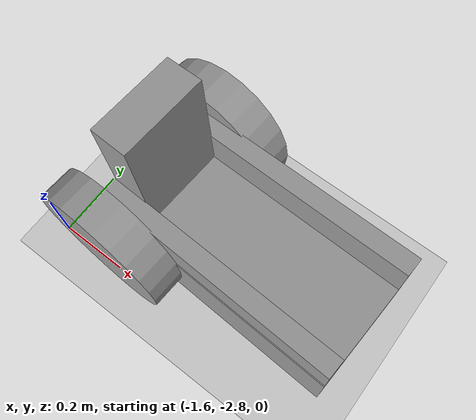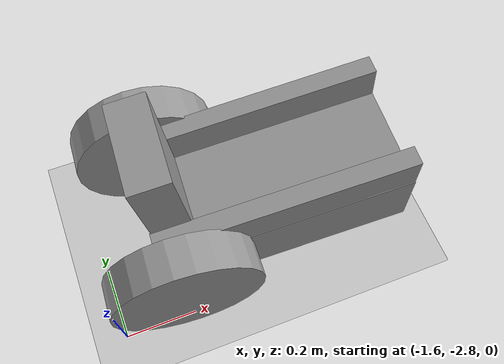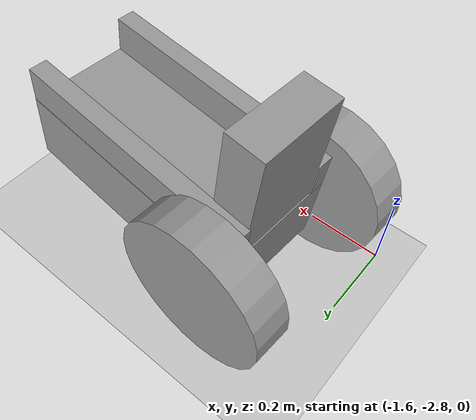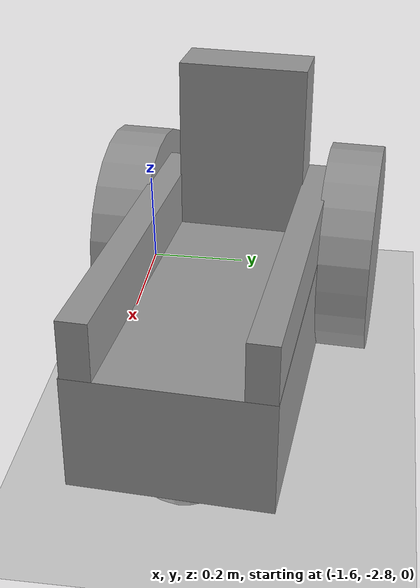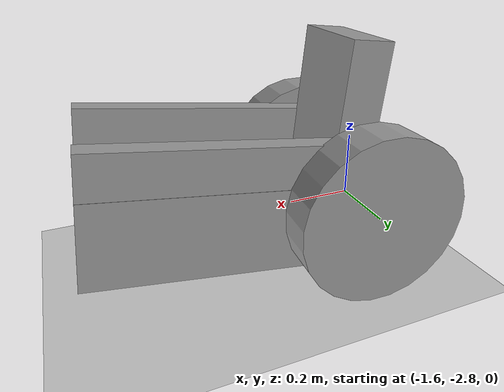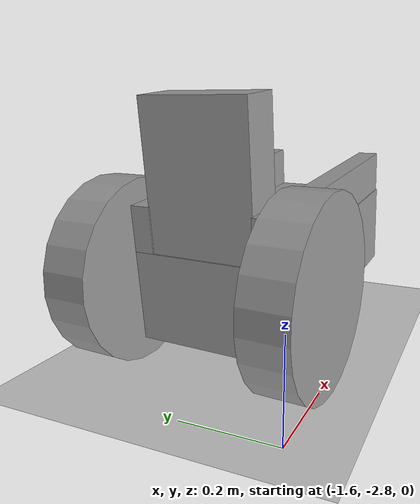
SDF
<sdf version="1.6">
 <world name="default">
  <model name="ground_plane">
   <static>1</static>
   <link name="link">
    <collision name="collision">
     <geometry><plane><normal>0 0 1</normal><size>100 100</size></plane></geometry>
     <surface><friction><ode><mu>100</mu><mu2>50</mu2></ode></friction></surface>
    </collision>
    <visual name="visual">
     <cast_shadows>0</cast_shadows>
     <geometry><plane><normal>0 0 1</normal><size>100 100</size></plane></geometry>
     <material>
      <script><uri>file://media/materials/scripts/gazebo.material</uri><name>Gazebo/Grey</name></script>
     </material>
    </visual>
   </link>
  </model>
  <model name="EmpressMobile">
   <link name="main_chassis">
    <inertial>
     <mass>1</mass>
     <inertia>
      <ixx>0.166667</ixx>
      <ixy>0</ixy>
      <ixz>0</ixz>
      <iyy>0.166667</iyy>
      <iyz>0</iyz>
      <izz>0.166667</izz>
     </inertia>
    </inertial>
    <visual name="bed_visual">
     <geometry><box><size>0.666667 0.333333 0.2</size></box></geometry>
     <material>
      <lighting>1</lighting>
      <script><uri>file://media/materials/scripts/gazebo.material</uri><name>Gazebo/Grey</name></script>
      <shader type="pixel"><normal_map>__default__</normal_map></shader>
      <ambient>0.3 0.3 0.3 1</ambient>
      <diffuse>0.7 0.7 0.7 1</diffuse>
      <specular>0.01 0.01 0.01 1</specular>
      <emissive>0 0 0 1</emissive>
     </material>
    </visual>
    <visual name="caster_visual">
     <pose>0.195335 -0.005477 -0.1 0 -0 0</pose>
     <geometry><sphere><radius>0.1</radius></sphere></geometry>
     <material><shader type="pixel"><normal_map>__default__</normal_map></shader></material>
    </visual>
    <visual name="throne_right_armrest_visual">
     <pose>0 -0.139087 0.15 0 -0 0</pose>
     <geometry><box><size>0.666667 0.05 0.1</size></box></geometry>
     <material>
      <lighting>1</lighting>
      <script><uri>file://media/materials/scripts/gazebo.material</uri><name>Gazebo/Grey</name></script>
      <shader type="pixel"><normal_map>__default__</normal_map></shader>
      <ambient>0.3 0.3 0.3 1</ambient>
      <diffuse>0.7 0.7 0.7 1</diffuse>
      <specular>0.01 0.01 0.01 1</specular>
      <emissive>0 0 0 1</emissive>
     </material>
    </visual>
    <visual name="throne_left_armrest_visual">
     <pose>0 0.140913 0.15 0 -0 0</pose>
     <geometry><box><size>0.666667 0.05 0.1</size></box></geometry>
     <material>
      <lighting>1</lighting>
      <script><uri>file://media/materials/scripts/gazebo.material</uri><name>Gazebo/Grey</name></script>
      <shader type="pixel"><normal_map>__default__</normal_map></shader>
      <ambient>0.3 0.3 0.3 1</ambient>
      <diffuse>0.7 0.7 0.7 1</diffuse>
      <specular>0.01 0.01 0.01 1</specular>
      <emissive>0 0 0 1</emissive>
     </material>
    </visual>
    <visual name="throne_backrest_visual">
     <pose>-0.28 0.000913 0.25 0 -0 0</pose>
     <geometry><box><size>0.1 0.233333 0.333333</size></box></geometry>
     <material>
      <lighting>1</lighting>
      <script><uri>file://media/materials/scripts/gazebo.material</uri><name>Gazebo/Grey</name></script>
      <shader type="pixel"><normal_map>__default__</normal_map></shader>
      <ambient>0.3 0.3 0.3 1</ambient>
      <diffuse>0.7 0.7 0.7 1</diffuse>
      <specular>0.01 0.01 0.01 1</specular>
      <emissive>0 0 0 1</emissive>
     </material>
    </visual>
    <collision name="bed_collision">
     <geometry><box><size>0.666667 0.333333 0.2</size></box></geometry>
     <surface>
      <friction>
       <ode><mu>1</mu><mu2>1</mu2><fdir1>0 0 0</fdir1><slip1>0</slip1><slip2>0</slip2></ode>
       <torsional>
        <coefficient>1</coefficient>
        <patch_radius>0</patch_radius>
        <surface_radius>0</surface_radius>
        <use_patch_radius>1</use_patch_radius>
        <ode><slip>0</slip></ode>
       </torsional>
      </friction>
      <bounce><restitution_coefficient>0</restitution_coefficient><threshold>1e+06</threshold></bounce>
      <contact>
       <collide_without_contact>0</collide_without_contact>
       <collide_without_contact_bitmask>1</collide_without_contact_bitmask>
       <collide_bitmask>1</collide_bitmask>
       <ode>
        <soft_cfm>0</soft_cfm>
        <soft_erp>0.2</soft_erp>
        <kp>1e+13</kp>
        <kd>1</kd>
        <max_vel>0.01</max_vel>
        <min_depth>0</min_depth>
       </ode>
       <bullet>
        <split_impulse>1</split_impulse>
        <split_impulse_penetration_threshold>-0.01</split_impulse_penetration_threshold>
        <soft_cfm>0</soft_cfm>
        <soft_erp>0.2</soft_erp>
        <kp>1e+13</kp>
        <kd>1</kd>
       </bullet>
      </contact>
     </surface>
    </collision>
    <collision name="caster_collision">
     <pose>0.195335 -0.005477 -0.1 0 -0 0</pose>
     <geometry><sphere><radius>0.1</radius></sphere></geometry>
     <surface>
      <friction>
       <ode><mu>0</mu><mu2>0</mu2><fdir1>0 0 0</fdir1><slip1>1</slip1><slip2>1</slip2></ode>
       <torsional>
        <coefficient>1</coefficient>
        <patch_radius>0</patch_radius>
        <surface_radius>0</surface_radius>
        <use_patch_radius>1</use_patch_radius>
        <ode><slip>0</slip></ode>
       </torsional>
      </friction>
      <bounce><restitution_coefficient>0</restitution_coefficient><threshold>1e+06</threshold></bounce>
      <contact>
       <collide_without_contact>0</collide_without_contact>
       <collide_without_contact_bitmask>1</collide_without_contact_bitmask>
       <collide_bitmask>1</collide_bitmask>
       <ode>
        <soft_cfm>0</soft_cfm>
        <soft_erp>0.2</soft_erp>
        <kp>1e+13</kp>
        <kd>1</kd>
        <max_vel>0.01</max_vel>
        <min_depth>0</min_depth>
       </ode>
       <bullet>
        <split_impulse>1</split_impulse>
        <split_impulse_penetration_threshold>-0.01</split_impulse_penetration_threshold>
        <soft_cfm>0</soft_cfm>
        <soft_erp>0.2</soft_erp>
        <kp>1e+13</kp>
        <kd>1</kd>
       </bullet>
      </contact>
     </surface>
    </collision>
    <collision name="throne_right_armrest_collision">
     <pose>0 -0.139087 0.15 0 -0 0</pose>
     <geometry><box><size>0.666667 0.05 0.1</size></box></geometry>
     <surface>
      <friction>
       <ode><mu>1</mu><mu2>1</mu2><fdir1>0 0 0</fdir1><slip1>0</slip1><slip2>0</slip2></ode>
       <torsional>
        <coefficient>1</coefficient>
        <patch_radius>0</patch_radius>
        <surface_radius>0</surface_radius>
        <use_patch_radius>1</use_patch_radius>
        <ode><slip>0</slip></ode>
       </torsional>
      </friction>
      <bounce><restitution_coefficient>0</restitution_coefficient><threshold>1e+06</threshold></bounce>
      <contact>
       <collide_without_contact>0</collide_without_contact>
       <collide_without_contact_bitmask>1</collide_without_contact_bitmask>
       <collide_bitmask>1</collide_bitmask>
       <ode>
        <soft_cfm>0</soft_cfm>
        <soft_erp>0.2</soft_erp>
        <kp>1e+13</kp>
        <kd>1</kd>
        <max_vel>0.01</max_vel>
        <min_depth>0</min_depth>
       </ode>
       <bullet>
        <split_impulse>1</split_impulse>
        <split_impulse_penetration_threshold>-0.01</split_impulse_penetration_threshold>
        <soft_cfm>0</soft_cfm>
        <soft_erp>0.2</soft_erp>
        <kp>1e+13</kp>
        <kd>1</kd>
       </bullet>
      </contact>
     </surface>
    </collision>
    <collision name="throne_left_armrest_collision">
     <pose>0 0.140913 0.15 0 -0 0</pose>
     <geometry><box><size>0.666667 0.05 0.1</size></box></geometry>
     <surface>
      <friction>
       <ode><mu>1</mu><mu2>1</mu2><fdir1>0 0 0</fdir1><slip1>0</slip1><slip2>0</slip2></ode>
       <torsional>
        <coefficient>1</coefficient>
        <patch_radius>0</patch_radius>
        <surface_radius>0</surface_radius>
        <use_patch_radius>1</use_patch_radius>
        <ode><slip>0</slip></ode>
       </torsional>
      </friction>
      <bounce><restitution_coefficient>0</restitution_coefficient><threshold>1e+06</threshold></bounce>
      <contact>
       <collide_without_contact>0</collide_without_contact>
       <collide_without_contact_bitmask>1</collide_without_contact_bitmask>
       <collide_bitmask>1</collide_bitmask>
       <ode>
        <soft_cfm>0</soft_cfm>
        <soft_erp>0.2</soft_erp>
        <kp>1e+13</kp>
        <kd>1</kd>
        <max_vel>0.01</max_vel>
        <min_depth>0</min_depth>
       </ode>
       <bullet>
        <split_impulse>1</split_impulse>
        <split_impulse_penetration_threshold>-0.01</split_impulse_penetration_threshold>
        <soft_cfm>0</soft_cfm>
        <soft_erp>0.2</soft_erp>
        <kp>1e+13</kp>
        <kd>1</kd>
       </bullet>
      </contact>
     </surface>
    </collision>
    <collision name="throne_backrest_collision">
     <pose>-0.28 0.000913 0.25 0 -0 0</pose>
     <geometry><box><size>0.1 0.233333 0.333333</size></box></geometry>
     <surface>
      <friction>
       <ode><mu>1</mu><mu2>1</mu2><fdir1>0 0 0</fdir1><slip1>0</slip1><slip2>0</slip2></ode>
       <torsional>
        <coefficient>1</coefficient>
        <patch_radius>0</patch_radius>
        <surface_radius>0</surface_radius>
        <use_patch_radius>1</use_patch_radius>
        <ode><slip>0</slip></ode>
       </torsional>
      </friction>
      <bounce><restitution_coefficient>0</restitution_coefficient><threshold>1e+06</threshold></bounce>
      <contact>
       <collide_without_contact>0</collide_without_contact>
       <collide_without_contact_bitmask>1</collide_without_contact_bitmask>
       <collide_bitmask>1</collide_bitmask>
       <ode>
        <soft_cfm>0</soft_cfm>
        <soft_erp>0.2</soft_erp>
        <kp>1e+13</kp>
        <kd>1</kd>
        <max_vel>0.01</max_vel>
        <min_depth>0</min_depth>
       </ode>
       <bullet>
        <split_impulse>1</split_impulse>
        <split_impulse_penetration_threshold>-0.01</split_impulse_penetration_threshold>
        <soft_cfm>0</soft_cfm>
        <soft_erp>0.2</soft_erp>
        <kp>1e+13</kp>
        <kd>1</kd>
       </bullet>
      </contact>
     </surface>
    </collision>
   </link>
   <link name="left_wheel">
    <pose>-0.3 0.21 0.05 1.5708 -0 0</pose>
    <inertial>
     <mass>1</mass>
     <inertia><ixx>0.145833</ixx><ixy>0</ixy><ixz>0</ixz><iyy>0.145833</iyy><iyz>0</iyz><izz>0.125</izz></inertia>
    </inertial>
    <visual name="visual">
     <geometry><cylinder><radius>0.2</radius><length>0.1</length></cylinder></geometry>
     <material>
      <lighting>1</lighting>
      <script><uri>file://media/materials/scripts/gazebo.material</uri><name>Gazebo/Grey</name></script>
      <shader type="pixel"><normal_map>__default__</normal_map></shader>
      <ambient>0.3 0.3 0.3 1</ambient>
      <diffuse>0.7 0.7 0.7 1</diffuse>
      <specular>0.01 0.01 0.01 1</specular>
      <emissive>0 0 0 1</emissive>
     </material>
    </visual>
    <collision name="collision">
     <geometry><cylinder><radius>0.2</radius><length>0.1</length></cylinder></geometry>
     <surface>
      <friction>
       <ode><mu>1</mu><mu2>1</mu2><fdir1>0 0 0</fdir1><slip1>0</slip1><slip2>0</slip2></ode>
       <torsional>
        <coefficient>1</coefficient>
        <patch_radius>0</patch_radius>
        <surface_radius>0</surface_radius>
        <use_patch_radius>1</use_patch_radius>
        <ode><slip>0</slip></ode>
       </torsional>
      </friction>
      <bounce><restitution_coefficient>0</restitution_coefficient><threshold>1e+06</threshold></bounce>
      <contact>
       <collide_without_contact>0</collide_without_contact>
       <collide_without_contact_bitmask>1</collide_without_contact_bitmask>
       <collide_bitmask>1</collide_bitmask>
       <ode>
        <soft_cfm>0</soft_cfm>
        <soft_erp>0.2</soft_erp>
        <kp>1e+13</kp>
        <kd>1</kd>
        <max_vel>0.01</max_vel>
        <min_depth>0</min_depth>
       </ode>
       <bullet>
        <split_impulse>1</split_impulse>
        <split_impulse_penetration_threshold>-0.01</split_impulse_penetration_threshold>
        <soft_cfm>0</soft_cfm>
        <soft_erp>0.2</soft_erp>
        <kp>1e+13</kp>
        <kd>1</kd>
       </bullet>
      </contact>
     </surface>
    </collision>
   </link>
   <link name="right_wheel">
    <pose>-0.3 -0.21 0.05 1.5708 -0 0</pose>
    <inertial>
     <mass>1</mass>
     <inertia><ixx>0.145833</ixx><ixy>0</ixy><ixz>0</ixz><iyy>0.145833</iyy><iyz>0</iyz><izz>0.125</izz></inertia>
    </inertial>
    <visual name="visual">
     <geometry><cylinder><radius>0.2</radius><length>0.1</length></cylinder></geometry>
     <material>
      <lighting>1</lighting>
      <script><uri>file://media/materials/scripts/gazebo.material</uri><name>Gazebo/Grey</name></script>
      <shader type="pixel"><normal_map>__default__</normal_map></shader>
      <ambient>0.3 0.3 0.3 1</ambient>
      <diffuse>0.7 0.7 0.7 1</diffuse>
      <specular>0.01 0.01 0.01 1</specular>
      <emissive>0 0 0 1</emissive>
     </material>
    </visual>
    <collision name="collision">
     <geometry><cylinder><radius>0.2</radius><length>0.1</length></cylinder></geometry>
     <surface>
      <friction>
       <ode><mu>1</mu><mu2>1</mu2><fdir1>0 0 0</fdir1><slip1>0</slip1><slip2>0</slip2></ode>
       <torsional>
        <coefficient>1</coefficient>
        <patch_radius>0</patch_radius>
        <surface_radius>0</surface_radius>
        <use_patch_radius>1</use_patch_radius>
        <ode><slip>0</slip></ode>
       </torsional>
      </friction>
      <bounce><restitution_coefficient>0</restitution_coefficient><threshold>1e+06</threshold></bounce>
      <contact>
       <collide_without_contact>0</collide_without_contact>
       <collide_without_contact_bitmask>1</collide_without_contact_bitmask>
       <collide_bitmask>1</collide_bitmask>
       <ode>
        <soft_cfm>0</soft_cfm>
        <soft_erp>0.2</soft_erp>
        <kp>1e+13</kp>
        <kd>1</kd>
        <max_vel>0.01</max_vel>
        <min_depth>0</min_depth>
       </ode>
       <bullet>
        <split_impulse>1</split_impulse>
        <split_impulse_penetration_threshold>-0.01</split_impulse_penetration_threshold>
        <soft_cfm>0</soft_cfm>
        <soft_erp>0.2</soft_erp>
        <kp>1e+13</kp>
        <kd>1</kd>
       </bullet>
      </contact>
     </surface>
    </collision>
   </link>
   <joint name="main_chassis_right_wheel_joint" type="revolute">
    <parent>main_chassis</parent>
    <child>right_wheel</child>
    <axis>
     <xyz>0 0 1</xyz>
     <use_parent_model_frame>0</use_parent_model_frame>
     <limit>
      <lower>-1.79769e+308</lower>
      <upper>1.79769e+308</upper>
      <effort>-1</effort>
      <velocity>-1</velocity>
     </limit>
     <dynamics>
      <spring_reference>0</spring_reference>
      <spring_stiffness>0</spring_stiffness>
      <damping>0</damping>
      <friction>0</friction>
     </dynamics>
    </axis>
    <physics>
     <ode><limit><cfm>0</cfm><erp>0.2</erp></limit><suspension><cfm>0</cfm><erp>0.2</erp></suspension></ode>
    </physics>
   </joint>
   <joint name="main_chassis_left_wheel_joint" type="revolute">
    <parent>main_chassis</parent>
    <child>left_wheel</child>
    <axis>
     <xyz>0 0 1</xyz>
     <use_parent_model_frame>0</use_parent_model_frame>
     <limit>
      <lower>-1.79769e+308</lower>
      <upper>1.79769e+308</upper>
      <effort>-1</effort>
      <velocity>-1</velocity>
     </limit>
     <dynamics>
      <spring_reference>0</spring_reference>
      <spring_stiffness>0</spring_stiffness>
      <damping>0</damping>
      <friction>0</friction>
     </dynamics>
    </axis>
    <physics>
     <ode><limit><cfm>0</cfm><erp>0.2</erp></limit><suspension><cfm>0</cfm><erp>0.2</erp></suspension></ode>
    </physics>
   </joint>
   <static>0</static>
   <pose>-1.09034 -2.58024 0.18008 -4e-06 -0.099607 -0.056864</pose>
  </model>
 </world>
</sdf>
